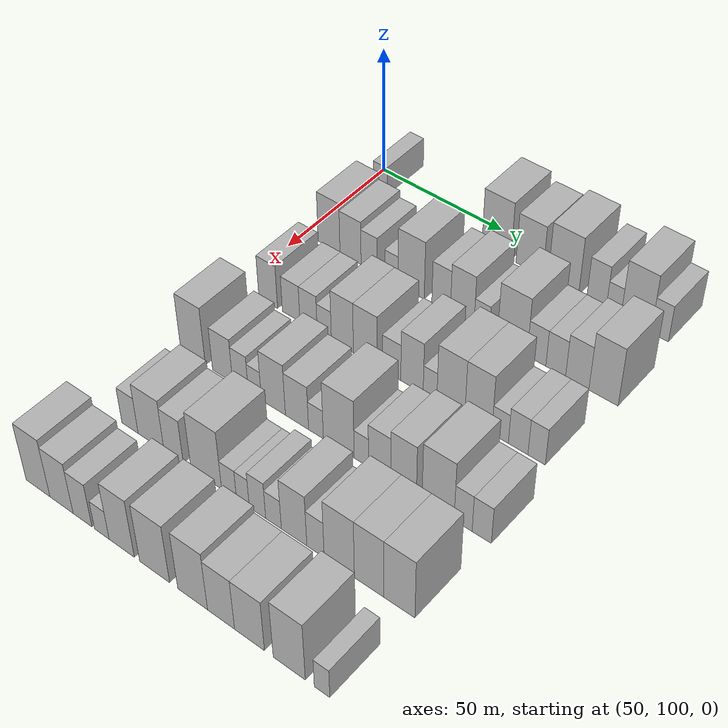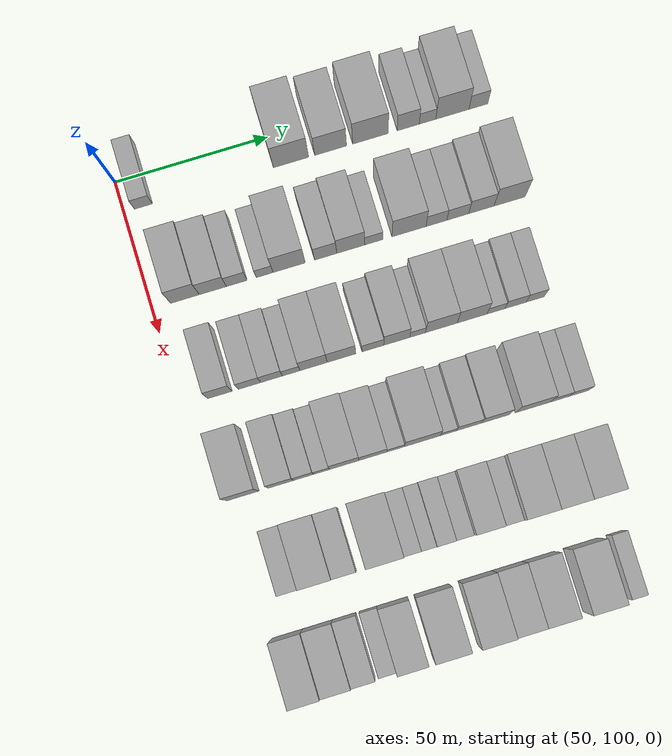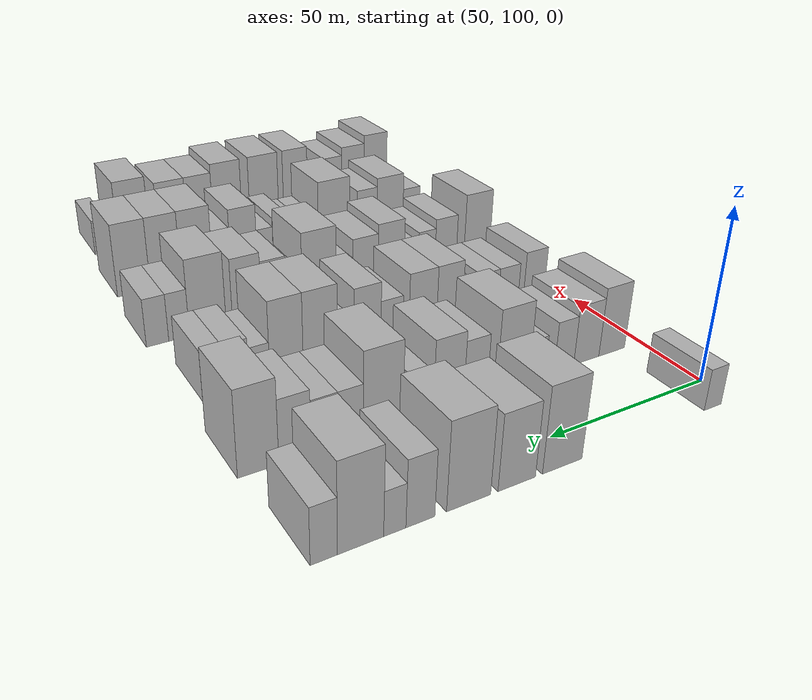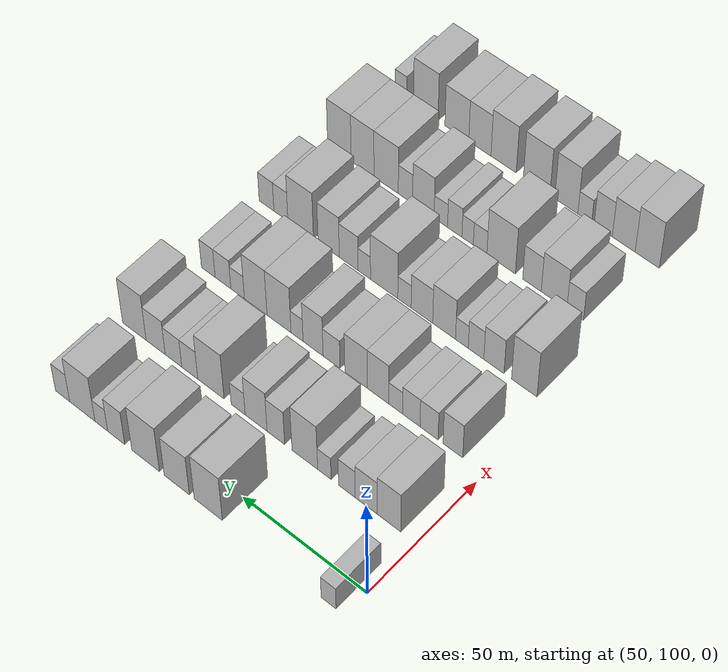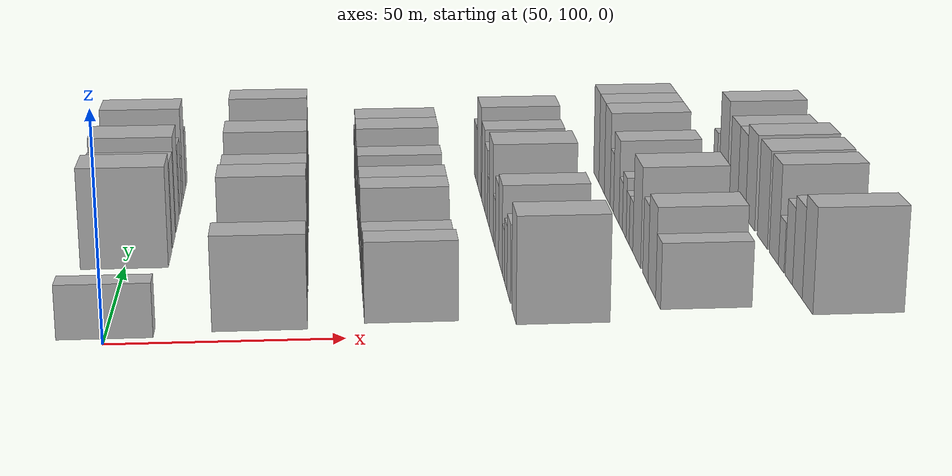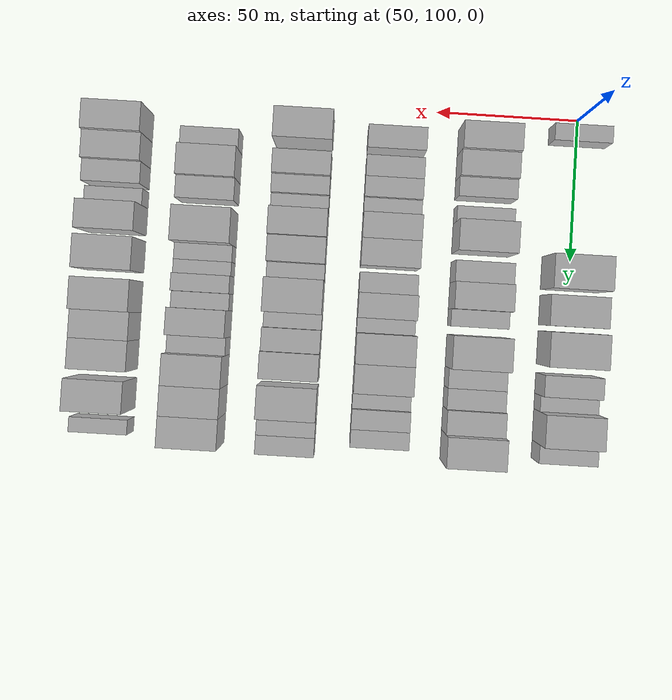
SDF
<sdf version="1.6">
 <world name="default">
  <model name="building_67">
   <static>1</static>
   <pose>50.0000 106.3643 0 0.000000 0.000000 0.000000</pose>
   <link name="link">
    <pose>0 0 6.00 0 0 0</pose>
    <collision name="collision"><geometry><box><size>20.0000 5.8722 12.0000</size></box></geometry></collision>
    <visual name="visual">
     <cast_shadows>0</cast_shadows>
     <geometry><box><size>20.0000 5.8722 12.0000</size></box></geometry>
     <material>
      <script>
       <uri>model://HANNAS_wall/materials/scripts</uri>
       <uri>model://HANNAS_wall/materials/textures</uri>
       <name>vrc/HANNAS_wall</name>
      </script>
     </material>
    </visual>
   </link>
  </model>
  <model name="building_68">
   <static>1</static>
   <pose>50.0000 154.6901 0 0.000000 0.000000 0.000000</pose>
   <link name="link">
    <pose>0 0 12.00 0 0 0</pose>
    <collision name="collision"><geometry><box><size>20.0000 11.5931 24.0000</size></box></geometry></collision>
    <visual name="visual">
     <cast_shadows>0</cast_shadows>
     <geometry><box><size>20.0000 11.5931 24.0000</size></box></geometry>
     <material>
      <script>
       <uri>model://HANNAS_wall/materials/scripts</uri>
       <uri>model://HANNAS_wall/materials/textures</uri>
       <name>vrc/HANNAS_wall</name>
      </script>
     </material>
    </visual>
   </link>
  </model>
  <model name="building_69">
   <static>1</static>
   <pose>50.0000 167.7251 0 0.000000 0.000000 0.000000</pose>
   <link name="link">
    <pose>0 0 10.50 0 0 0</pose>
    <collision name="collision"><geometry><box><size>20.0000 10.4769 21.0000</size></box></geometry></collision>
    <visual name="visual">
     <cast_shadows>0</cast_shadows>
     <geometry><box><size>20.0000 10.4769 21.0000</size></box></geometry>
     <material>
      <script>
       <uri>model://HANNAS_wall/materials/scripts</uri>
       <uri>model://HANNAS_wall/materials/textures</uri>
       <name>vrc/HANNAS_wall</name>
      </script>
     </material>
    </visual>
   </link>
  </model>
  <model name="building_70">
   <static>1</static>
   <pose>50.0000 180.8131 0 0.000000 0.000000 0.000000</pose>
   <link name="link">
    <pose>0 0 12.00 0 0 0</pose>
    <collision name="collision"><geometry><box><size>20.0000 11.6990 24.0000</size></box></geometry></collision>
    <visual name="visual">
     <cast_shadows>0</cast_shadows>
     <geometry><box><size>20.0000 11.6990 24.0000</size></box></geometry>
     <material>
      <script>
       <uri>model://HANNAS_wall/materials/scripts</uri>
       <uri>model://HANNAS_wall/materials/textures</uri>
       <name>vrc/HANNAS_wall</name>
      </script>
     </material>
    </visual>
   </link>
  </model>
  <model name="building_71">
   <static>1</static>
   <pose>50.0000 193.3093 0 0.000000 0.000000 0.000000</pose>
   <link name="link">
    <pose>0 0 9.00 0 0 0</pose>
    <collision name="collision"><geometry><box><size>20.0000 7.2934 18.0000</size></box></geometry></collision>
    <visual name="visual">
     <cast_shadows>0</cast_shadows>
     <geometry><box><size>20.0000 7.2934 18.0000</size></box></geometry>
     <material>
      <script>
       <uri>model://HANNAS_wall/materials/scripts</uri>
       <uri>model://HANNAS_wall/materials/textures</uri>
       <name>vrc/HANNAS_wall</name>
      </script>
     </material>
    </visual>
   </link>
  </model>
  <model name="building_72">
   <static>1</static>
   <pose>50.0000 199.6845 0 0.000000 0.000000 0.000000</pose>
   <link name="link">
    <pose>0 0 6.00 0 0 0</pose>
    <collision name="collision"><geometry><box><size>20.0000 5.4570 12.0000</size></box></geometry></collision>
    <visual name="visual">
     <cast_shadows>0</cast_shadows>
     <geometry><box><size>20.0000 5.4570 12.0000</size></box></geometry>
     <material>
      <script>
       <uri>model://HANNAS_wall/materials/scripts</uri>
       <uri>model://HANNAS_wall/materials/textures</uri>
       <name>vrc/HANNAS_wall</name>
      </script>
     </material>
    </visual>
   </link>
  </model>
  <model name="building_73">
   <static>1</static>
   <pose>50.0000 207.9001 0 0.000000 0.000000 0.000000</pose>
   <link name="link">
    <pose>0 0 12.00 0 0 0</pose>
    <collision name="collision"><geometry><box><size>20.0000 10.9741 24.0000</size></box></geometry></collision>
    <visual name="visual">
     <cast_shadows>0</cast_shadows>
     <geometry><box><size>20.0000 10.9741 24.0000</size></box></geometry>
     <material>
      <script>
       <uri>model://HANNAS_wall/materials/scripts</uri>
       <uri>model://HANNAS_wall/materials/textures</uri>
       <name>vrc/HANNAS_wall</name>
      </script>
     </material>
    </visual>
   </link>
  </model>
  <model name="building_74">
   <static>1</static>
   <pose>50.0000 216.4967 0 0.000000 0.000000 0.000000</pose>
   <link name="link">
    <pose>0 0 7.50 0 0 0</pose>
    <collision name="collision"><geometry><box><size>20.0000 6.2192 15.0000</size></box></geometry></collision>
    <visual name="visual">
     <cast_shadows>0</cast_shadows>
     <geometry><box><size>20.0000 6.2192 15.0000</size></box></geometry>
     <material>
      <script>
       <uri>model://HANNAS_wall/materials/scripts</uri>
       <uri>model://HANNAS_wall/materials/textures</uri>
       <name>vrc/HANNAS_wall</name>
      </script>
     </material>
    </visual>
   </link>
  </model>
  <model name="building_188">
   <static>1</static>
   <pose>82.0000 110.6654 0 0.000000 0.000000 0.000000</pose>
   <link name="link">
    <pose>0 0 10.50 0 0 0</pose>
    <collision name="collision"><geometry><box><size>20.0000 9.2781 21.0000</size></box></geometry></collision>
    <visual name="visual">
     <cast_shadows>0</cast_shadows>
     <geometry><box><size>20.0000 9.2781 21.0000</size></box></geometry>
     <material>
      <script>
       <uri>model://HANNAS_wall/materials/scripts</uri>
       <uri>model://HANNAS_wall/materials/textures</uri>
       <name>vrc/HANNAS_wall</name>
      </script>
     </material>
    </visual>
   </link>
  </model>
  <model name="building_189">
   <static>1</static>
   <pose>82.0000 119.7257 0 0.000000 0.000000 0.000000</pose>
   <link name="link">
    <pose>0 0 9.00 0 0 0</pose>
    <collision name="collision"><geometry><box><size>20.0000 8.8426 18.0000</size></box></geometry></collision>
    <visual name="visual">
     <cast_shadows>0</cast_shadows>
     <geometry><box><size>20.0000 8.8426 18.0000</size></box></geometry>
     <material>
      <script>
       <uri>model://HANNAS_wall/materials/scripts</uri>
       <uri>model://HANNAS_wall/materials/textures</uri>
       <name>vrc/HANNAS_wall</name>
      </script>
     </material>
    </visual>
   </link>
  </model>
  <model name="building_190">
   <static>1</static>
   <pose>82.0000 127.4957 0 0.000000 0.000000 0.000000</pose>
   <link name="link">
    <pose>0 0 7.50 0 0 0</pose>
    <collision name="collision"><geometry><box><size>20.0000 6.6973 15.0000</size></box></geometry></collision>
    <visual name="visual">
     <cast_shadows>0</cast_shadows>
     <geometry><box><size>20.0000 6.6973 15.0000</size></box></geometry>
     <material>
      <script>
       <uri>model://HANNAS_wall/materials/scripts</uri>
       <uri>model://HANNAS_wall/materials/textures</uri>
       <name>vrc/HANNAS_wall</name>
      </script>
     </material>
    </visual>
   </link>
  </model>
  <model name="building_191">
   <static>1</static>
   <pose>82.0000 136.5782 0 0.000000 0.000000 0.000000</pose>
   <link name="link">
    <pose>0 0 6.00 0 0 0</pose>
    <collision name="collision"><geometry><box><size>20.0000 5.4678 12.0000</size></box></geometry></collision>
    <visual name="visual">
     <cast_shadows>0</cast_shadows>
     <geometry><box><size>20.0000 5.4678 12.0000</size></box></geometry>
     <material>
      <script>
       <uri>model://HANNAS_wall/materials/scripts</uri>
       <uri>model://HANNAS_wall/materials/textures</uri>
       <name>vrc/HANNAS_wall</name>
      </script>
     </material>
    </visual>
   </link>
  </model>
  <model name="building_192">
   <static>1</static>
   <pose>82.0000 144.5621 0 0.000000 0.000000 0.000000</pose>
   <link name="link">
    <pose>0 0 12.00 0 0 0</pose>
    <collision name="collision"><geometry><box><size>20.0000 10.4999 24.0000</size></box></geometry></collision>
    <visual name="visual">
     <cast_shadows>0</cast_shadows>
     <geometry><box><size>20.0000 10.4999 24.0000</size></box></geometry>
     <material>
      <script>
       <uri>model://HANNAS_wall/materials/scripts</uri>
       <uri>model://HANNAS_wall/materials/textures</uri>
       <name>vrc/HANNAS_wall</name>
      </script>
     </material>
    </visual>
   </link>
  </model>
  <model name="building_193">
   <static>1</static>
   <pose>82.0000 156.4435 0 0.000000 0.000000 0.000000</pose>
   <link name="link">
    <pose>0 0 9.00 0 0 0</pose>
    <collision name="collision"><geometry><box><size>20.0000 7.2629 18.0000</size></box></geometry></collision>
    <visual name="visual">
     <cast_shadows>0</cast_shadows>
     <geometry><box><size>20.0000 7.2629 18.0000</size></box></geometry>
     <material>
      <script>
       <uri>model://HANNAS_wall/materials/scripts</uri>
       <uri>model://HANNAS_wall/materials/textures</uri>
       <name>vrc/HANNAS_wall</name>
      </script>
     </material>
    </visual>
   </link>
  </model>
  <model name="building_194">
   <static>1</static>
   <pose>82.0000 164.6586 0 0.000000 0.000000 0.000000</pose>
   <link name="link">
    <pose>0 0 10.50 0 0 0</pose>
    <collision name="collision"><geometry><box><size>20.0000 9.1674 21.0000</size></box></geometry></collision>
    <visual name="visual">
     <cast_shadows>0</cast_shadows>
     <geometry><box><size>20.0000 9.1674 21.0000</size></box></geometry>
     <material>
      <script>
       <uri>model://HANNAS_wall/materials/scripts</uri>
       <uri>model://HANNAS_wall/materials/textures</uri>
       <name>vrc/HANNAS_wall</name>
      </script>
     </material>
    </visual>
   </link>
  </model>
  <model name="building_195">
   <static>1</static>
   <pose>82.0000 172.1850 0 0.000000 0.000000 0.000000</pose>
   <link name="link">
    <pose>0 0 6.00 0 0 0</pose>
    <collision name="collision"><geometry><box><size>20.0000 5.8855 12.0000</size></box></geometry></collision>
    <visual name="visual">
     <cast_shadows>0</cast_shadows>
     <geometry><box><size>20.0000 5.8855 12.0000</size></box></geometry>
     <material>
      <script>
       <uri>model://HANNAS_wall/materials/scripts</uri>
       <uri>model://HANNAS_wall/materials/textures</uri>
       <name>vrc/HANNAS_wall</name>
      </script>
     </material>
    </visual>
   </link>
  </model>
  <model name="building_196">
   <static>1</static>
   <pose>82.0000 183.7070 0 0.000000 0.000000 0.000000</pose>
   <link name="link">
    <pose>0 0 12.00 0 0 0</pose>
    <collision name="collision"><geometry><box><size>20.0000 11.1584 24.0000</size></box></geometry></collision>
    <visual name="visual">
     <cast_shadows>0</cast_shadows>
     <geometry><box><size>20.0000 11.1584 24.0000</size></box></geometry>
     <material>
      <script>
       <uri>model://HANNAS_wall/materials/scripts</uri>
       <uri>model://HANNAS_wall/materials/textures</uri>
       <name>vrc/HANNAS_wall</name>
      </script>
     </material>
    </visual>
   </link>
  </model>
  <model name="building_197">
   <static>1</static>
   <pose>82.0000 192.7160 0 0.000000 0.000000 0.000000</pose>
   <link name="link">
    <pose>0 0 7.50 0 0 0</pose>
    <collision name="collision"><geometry><box><size>20.0000 6.8594 15.0000</size></box></geometry></collision>
    <visual name="visual">
     <cast_shadows>0</cast_shadows>
     <geometry><box><size>20.0000 6.8594 15.0000</size></box></geometry>
     <material>
      <script>
       <uri>model://HANNAS_wall/materials/scripts</uri>
       <uri>model://HANNAS_wall/materials/textures</uri>
       <name>vrc/HANNAS_wall</name>
      </script>
     </material>
    </visual>
   </link>
  </model>
  <model name="building_198">
   <static>1</static>
   <pose>82.0000 199.7238 0 0.000000 0.000000 0.000000</pose>
   <link name="link">
    <pose>0 0 7.50 0 0 0</pose>
    <collision name="collision"><geometry><box><size>20.0000 7.1562 15.0000</size></box></geometry></collision>
    <visual name="visual">
     <cast_shadows>0</cast_shadows>
     <geometry><box><size>20.0000 7.1562 15.0000</size></box></geometry>
     <material>
      <script>
       <uri>model://HANNAS_wall/materials/scripts</uri>
       <uri>model://HANNAS_wall/materials/textures</uri>
       <name>vrc/HANNAS_wall</name>
      </script>
     </material>
    </visual>
   </link>
  </model>
  <model name="building_199">
   <static>1</static>
   <pose>82.0000 207.4611 0 0.000000 0.000000 0.000000</pose>
   <link name="link">
    <pose>0 0 9.00 0 0 0</pose>
    <collision name="collision"><geometry><box><size>20.0000 8.3185 18.0000</size></box></geometry></collision>
    <visual name="visual">
     <cast_shadows>0</cast_shadows>
     <geometry><box><size>20.0000 8.3185 18.0000</size></box></geometry>
     <material>
      <script>
       <uri>model://HANNAS_wall/materials/scripts</uri>
       <uri>model://HANNAS_wall/materials/textures</uri>
       <name>vrc/HANNAS_wall</name>
      </script>
     </material>
    </visual>
   </link>
  </model>
  <model name="building_200">
   <static>1</static>
   <pose>82.0000 216.7696 0 0.000000 0.000000 0.000000</pose>
   <link name="link">
    <pose>0 0 12.00 0 0 0</pose>
    <collision name="collision"><geometry><box><size>20.0000 10.2983 24.0000</size></box></geometry></collision>
    <visual name="visual">
     <cast_shadows>0</cast_shadows>
     <geometry><box><size>20.0000 10.2983 24.0000</size></box></geometry>
     <material>
      <script>
       <uri>model://HANNAS_wall/materials/scripts</uri>
       <uri>model://HANNAS_wall/materials/textures</uri>
       <name>vrc/HANNAS_wall</name>
      </script>
     </material>
    </visual>
   </link>
  </model>
  <model name="building_310">
   <static>1</static>
   <pose>114.0000 112.6703 0 0.000000 0.000000 0.000000</pose>
   <link name="link">
    <pose>0 0 9.00 0 0 0</pose>
    <collision name="collision"><geometry><box><size>20.0000 7.8197 18.0000</size></box></geometry></collision>
    <visual name="visual">
     <cast_shadows>0</cast_shadows>
     <geometry><box><size>20.0000 7.8197 18.0000</size></box></geometry>
     <material>
      <script>
       <uri>model://HANNAS_wall/materials/scripts</uri>
       <uri>model://HANNAS_wall/materials/textures</uri>
       <name>vrc/HANNAS_wall</name>
      </script>
     </material>
    </visual>
   </link>
  </model>
  <model name="building_311">
   <static>1</static>
   <pose>114.0000 122.2066 0 0.000000 0.000000 0.000000</pose>
   <link name="link">
    <pose>0 0 7.50 0 0 0</pose>
    <collision name="collision"><geometry><box><size>20.0000 7.2528 15.0000</size></box></geometry></collision>
    <visual name="visual">
     <cast_shadows>0</cast_shadows>
     <geometry><box><size>20.0000 7.2528 15.0000</size></box></geometry>
     <material>
      <script>
       <uri>model://HANNAS_wall/materials/scripts</uri>
       <uri>model://HANNAS_wall/materials/textures</uri>
       <name>vrc/HANNAS_wall</name>
      </script>
     </material>
    </visual>
   </link>
  </model>
  <model name="building_312">
   <static>1</static>
   <pose>114.0000 129.3438 0 0.000000 0.000000 0.000000</pose>
   <link name="link">
    <pose>0 0 7.50 0 0 0</pose>
    <collision name="collision"><geometry><box><size>20.0000 7.0217 15.0000</size></box></geometry></collision>
    <visual name="visual">
     <cast_shadows>0</cast_shadows>
     <geometry><box><size>20.0000 7.0217 15.0000</size></box></geometry>
     <material>
      <script>
       <uri>model://HANNAS_wall/materials/scripts</uri>
       <uri>model://HANNAS_wall/materials/textures</uri>
       <name>vrc/HANNAS_wall</name>
      </script>
     </material>
    </visual>
   </link>
  </model>
  <model name="building_313">
   <static>1</static>
   <pose>114.0000 135.7171 0 0.000000 0.000000 0.000000</pose>
   <link name="link">
    <pose>0 0 6.00 0 0 0</pose>
    <collision name="collision"><geometry><box><size>20.0000 5.7250 12.0000</size></box></geometry></collision>
    <visual name="visual">
     <cast_shadows>0</cast_shadows>
     <geometry><box><size>20.0000 5.7250 12.0000</size></box></geometry>
     <material>
      <script>
       <uri>model://HANNAS_wall/materials/scripts</uri>
       <uri>model://HANNAS_wall/materials/textures</uri>
       <name>vrc/HANNAS_wall</name>
      </script>
     </material>
    </visual>
   </link>
  </model>
  <model name="building_314">
   <static>1</static>
   <pose>114.0000 142.9618 0 0.000000 0.000000 0.000000</pose>
   <link name="link">
    <pose>0 0 10.50 0 0 0</pose>
    <collision name="collision"><geometry><box><size>20.0000 8.7645 21.0000</size></box></geometry></collision>
    <visual name="visual">
     <cast_shadows>0</cast_shadows>
     <geometry><box><size>20.0000 8.7645 21.0000</size></box></geometry>
     <material>
      <script>
       <uri>model://HANNAS_wall/materials/scripts</uri>
       <uri>model://HANNAS_wall/materials/textures</uri>
       <name>vrc/HANNAS_wall</name>
      </script>
     </material>
    </visual>
   </link>
  </model>
  <model name="building_315">
   <static>1</static>
   <pose>114.0000 151.9770 0 0.000000 0.000000 0.000000</pose>
   <link name="link">
    <pose>0 0 10.50 0 0 0</pose>
    <collision name="collision"><geometry><box><size>20.0000 9.2659 21.0000</size></box></geometry></collision>
    <visual name="visual">
     <cast_shadows>0</cast_shadows>
     <geometry><box><size>20.0000 9.2659 21.0000</size></box></geometry>
     <material>
      <script>
       <uri>model://HANNAS_wall/materials/scripts</uri>
       <uri>model://HANNAS_wall/materials/textures</uri>
       <name>vrc/HANNAS_wall</name>
      </script>
     </material>
    </visual>
   </link>
  </model>
  <model name="building_316">
   <static>1</static>
   <pose>114.0000 162.1365 0 0.000000 0.000000 0.000000</pose>
   <link name="link">
    <pose>0 0 7.50 0 0 0</pose>
    <collision name="collision"><geometry><box><size>20.0000 7.0532 15.0000</size></box></geometry></collision>
    <visual name="visual">
     <cast_shadows>0</cast_shadows>
     <geometry><box><size>20.0000 7.0532 15.0000</size></box></geometry>
     <material>
      <script>
       <uri>model://HANNAS_wall/materials/scripts</uri>
       <uri>model://HANNAS_wall/materials/textures</uri>
       <name>vrc/HANNAS_wall</name>
      </script>
     </material>
    </visual>
   </link>
  </model>
  <model name="building_317">
   <static>1</static>
   <pose>114.0000 169.8855 0 0.000000 0.000000 0.000000</pose>
   <link name="link">
    <pose>0 0 10.50 0 0 0</pose>
    <collision name="collision"><geometry><box><size>20.0000 8.4447 21.0000</size></box></geometry></collision>
    <visual name="visual">
     <cast_shadows>0</cast_shadows>
     <geometry><box><size>20.0000 8.4447 21.0000</size></box></geometry>
     <material>
      <script>
       <uri>model://HANNAS_wall/materials/scripts</uri>
       <uri>model://HANNAS_wall/materials/textures</uri>
       <name>vrc/HANNAS_wall</name>
      </script>
     </material>
    </visual>
   </link>
  </model>
  <model name="building_318">
   <static>1</static>
   <pose>114.0000 176.6546 0 0.000000 0.000000 0.000000</pose>
   <link name="link">
    <pose>0 0 6.00 0 0 0</pose>
    <collision name="collision"><geometry><box><size>20.0000 5.0937 12.0000</size></box></geometry></collision>
    <visual name="visual">
     <cast_shadows>0</cast_shadows>
     <geometry><box><size>20.0000 5.0937 12.0000</size></box></geometry>
     <material>
      <script>
       <uri>model://HANNAS_wall/materials/scripts</uri>
       <uri>model://HANNAS_wall/materials/textures</uri>
       <name>vrc/HANNAS_wall</name>
      </script>
     </material>
    </visual>
   </link>
  </model>
  <model name="building_319">
   <static>1</static>
   <pose>114.0000 184.3352 0 0.000000 0.000000 0.000000</pose>
   <link name="link">
    <pose>0 0 12.00 0 0 0</pose>
    <collision name="collision"><geometry><box><size>20.0000 10.2675 24.0000</size></box></geometry></collision>
    <visual name="visual">
     <cast_shadows>0</cast_shadows>
     <geometry><box><size>20.0000 10.2675 24.0000</size></box></geometry>
     <material>
      <script>
       <uri>model://HANNAS_wall/materials/scripts</uri>
       <uri>model://HANNAS_wall/materials/textures</uri>
       <name>vrc/HANNAS_wall</name>
      </script>
     </material>
    </visual>
   </link>
  </model>
  <model name="building_320">
   <static>1</static>
   <pose>114.0000 194.3440 0 0.000000 0.000000 0.000000</pose>
   <link name="link">
    <pose>0 0 12.00 0 0 0</pose>
    <collision name="collision"><geometry><box><size>20.0000 9.7500 24.0000</size></box></geometry></collision>
    <visual name="visual">
     <cast_shadows>0</cast_shadows>
     <geometry><box><size>20.0000 9.7500 24.0000</size></box></geometry>
     <material>
      <script>
       <uri>model://HANNAS_wall/materials/scripts</uri>
       <uri>model://HANNAS_wall/materials/textures</uri>
       <name>vrc/HANNAS_wall</name>
      </script>
     </material>
    </visual>
   </link>
  </model>
  <model name="building_321">
   <static>1</static>
   <pose>114.0000 202.1589 0 0.000000 0.000000 0.000000</pose>
   <link name="link">
    <pose>0 0 6.00 0 0 0</pose>
    <collision name="collision"><geometry><box><size>20.0000 5.8799 12.0000</size></box></geometry></collision>
    <visual name="visual">
     <cast_shadows>0</cast_shadows>
     <geometry><box><size>20.0000 5.8799 12.0000</size></box></geometry>
     <material>
      <script>
       <uri>model://HANNAS_wall/materials/scripts</uri>
       <uri>model://HANNAS_wall/materials/textures</uri>
       <name>vrc/HANNAS_wall</name>
      </script>
     </material>
    </visual>
   </link>
  </model>
  <model name="building_322">
   <static>1</static>
   <pose>114.0000 208.5302 0 0.000000 0.000000 0.000000</pose>
   <link name="link">
    <pose>0 0 7.50 0 0 0</pose>
    <collision name="collision"><geometry><box><size>20.0000 6.8627 15.0000</size></box></geometry></collision>
    <visual name="visual">
     <cast_shadows>0</cast_shadows>
     <geometry><box><size>20.0000 6.8627 15.0000</size></box></geometry>
     <material>
      <script>
       <uri>model://HANNAS_wall/materials/scripts</uri>
       <uri>model://HANNAS_wall/materials/textures</uri>
       <name>vrc/HANNAS_wall</name>
      </script>
     </material>
    </visual>
   </link>
  </model>
  <model name="building_323">
   <static>1</static>
   <pose>114.0000 214.9681 0 0.000000 0.000000 0.000000</pose>
   <link name="link">
    <pose>0 0 7.50 0 0 0</pose>
    <collision name="collision"><geometry><box><size>20.0000 6.0131 15.0000</size></box></geometry></collision>
    <visual name="visual">
     <cast_shadows>0</cast_shadows>
     <geometry><box><size>20.0000 6.0131 15.0000</size></box></geometry>
     <material>
      <script>
       <uri>model://HANNAS_wall/materials/scripts</uri>
       <uri>model://HANNAS_wall/materials/textures</uri>
       <name>vrc/HANNAS_wall</name>
      </script>
     </material>
    </visual>
   </link>
  </model>
  <model name="building_433">
   <static>1</static>
   <pose>146.0000 110.6985 0 0.000000 0.000000 0.000000</pose>
   <link name="link">
    <pose>0 0 12.00 0 0 0</pose>
    <collision name="collision"><geometry><box><size>20.0000 10.1978 24.0000</size></box></geometry></collision>
    <visual name="visual">
     <cast_shadows>0</cast_shadows>
     <geometry><box><size>20.0000 10.1978 24.0000</size></box></geometry>
     <material>
      <script>
       <uri>model://HANNAS_wall/materials/scripts</uri>
       <uri>model://HANNAS_wall/materials/textures</uri>
       <name>vrc/HANNAS_wall</name>
      </script>
     </material>
    </visual>
   </link>
  </model>
  <model name="building_434">
   <static>1</static>
   <pose>146.0000 122.8788 0 0.000000 0.000000 0.000000</pose>
   <link name="link">
    <pose>0 0 9.00 0 0 0</pose>
    <collision name="collision"><geometry><box><size>20.0000 8.1629 18.0000</size></box></geometry></collision>
    <visual name="visual">
     <cast_shadows>0</cast_shadows>
     <geometry><box><size>20.0000 8.1629 18.0000</size></box></geometry>
     <material>
      <script>
       <uri>model://HANNAS_wall/materials/scripts</uri>
       <uri>model://HANNAS_wall/materials/textures</uri>
       <name>vrc/HANNAS_wall</name>
      </script>
     </material>
    </visual>
   </link>
  </model>
  <model name="building_435">
   <static>1</static>
   <pose>146.0000 130.1259 0 0.000000 0.000000 0.000000</pose>
   <link name="link">
    <pose>0 0 7.50 0 0 0</pose>
    <collision name="collision"><geometry><box><size>20.0000 6.3313 15.0000</size></box></geometry></collision>
    <visual name="visual">
     <cast_shadows>0</cast_shadows>
     <geometry><box><size>20.0000 6.3313 15.0000</size></box></geometry>
     <material>
      <script>
       <uri>model://HANNAS_wall/materials/scripts</uri>
       <uri>model://HANNAS_wall/materials/textures</uri>
       <name>vrc/HANNAS_wall</name>
      </script>
     </material>
    </visual>
   </link>
  </model>
  <model name="building_436">
   <static>1</static>
   <pose>146.0000 135.9012 0 0.000000 0.000000 0.000000</pose>
   <link name="link">
    <pose>0 0 6.00 0 0 0</pose>
    <collision name="collision"><geometry><box><size>20.0000 5.2192 12.0000</size></box></geometry></collision>
    <visual name="visual">
     <cast_shadows>0</cast_shadows>
     <geometry><box><size>20.0000 5.2192 12.0000</size></box></geometry>
     <material>
      <script>
       <uri>model://HANNAS_wall/materials/scripts</uri>
       <uri>model://HANNAS_wall/materials/textures</uri>
       <name>vrc/HANNAS_wall</name>
      </script>
     </material>
    </visual>
   </link>
  </model>
  <model name="building_437">
   <static>1</static>
   <pose>146.0000 143.2120 0 0.000000 0.000000 0.000000</pose>
   <link name="link">
    <pose>0 0 10.50 0 0 0</pose>
    <collision name="collision"><geometry><box><size>20.0000 9.4024 21.0000</size></box></geometry></collision>
    <visual name="visual">
     <cast_shadows>0</cast_shadows>
     <geometry><box><size>20.0000 9.4024 21.0000</size></box></geometry>
     <material>
      <script>
       <uri>model://HANNAS_wall/materials/scripts</uri>
       <uri>model://HANNAS_wall/materials/textures</uri>
       <name>vrc/HANNAS_wall</name>
      </script>
     </material>
    </visual>
   </link>
  </model>
  <model name="building_438">
   <static>1</static>
   <pose>146.0000 152.3873 0 0.000000 0.000000 0.000000</pose>
   <link name="link">
    <pose>0 0 9.00 0 0 0</pose>
    <collision name="collision"><geometry><box><size>20.0000 8.9482 18.0000</size></box></geometry></collision>
    <visual name="visual">
     <cast_shadows>0</cast_shadows>
     <geometry><box><size>20.0000 8.9482 18.0000</size></box></geometry>
     <material>
      <script>
       <uri>model://HANNAS_wall/materials/scripts</uri>
       <uri>model://HANNAS_wall/materials/textures</uri>
       <name>vrc/HANNAS_wall</name>
      </script>
     </material>
    </visual>
   </link>
  </model>
  <model name="building_439">
   <static>1</static>
   <pose>146.0000 159.6677 0 0.000000 0.000000 0.000000</pose>
   <link name="link">
    <pose>0 0 6.00 0 0 0</pose>
    <collision name="collision"><geometry><box><size>20.0000 5.6127 12.0000</size></box></geometry></collision>
    <visual name="visual">
     <cast_shadows>0</cast_shadows>
     <geometry><box><size>20.0000 5.6127 12.0000</size></box></geometry>
     <material>
      <script>
       <uri>model://HANNAS_wall/materials/scripts</uri>
       <uri>model://HANNAS_wall/materials/textures</uri>
       <name>vrc/HANNAS_wall</name>
      </script>
     </material>
    </visual>
   </link>
  </model>
  <model name="building_440">
   <static>1</static>
   <pose>146.0000 168.2292 0 0.000000 0.000000 0.000000</pose>
   <link name="link">
    <pose>0 0 12.00 0 0 0</pose>
    <collision name="collision"><geometry><box><size>20.0000 11.5103 24.0000</size></box></geometry></collision>
    <visual name="visual">
     <cast_shadows>0</cast_shadows>
     <geometry><box><size>20.0000 11.5103 24.0000</size></box></geometry>
     <material>
      <script>
       <uri>model://HANNAS_wall/materials/scripts</uri>
       <uri>model://HANNAS_wall/materials/textures</uri>
       <name>vrc/HANNAS_wall</name>
      </script>
     </material>
    </visual>
   </link>
  </model>
  <model name="building_441">
   <static>1</static>
   <pose>146.0000 176.6158 0 0.000000 0.000000 0.000000</pose>
   <link name="link">
    <pose>0 0 6.00 0 0 0</pose>
    <collision name="collision"><geometry><box><size>20.0000 5.2629 12.0000</size></box></geometry></collision>
    <visual name="visual">
     <cast_shadows>0</cast_shadows>
     <geometry><box><size>20.0000 5.2629 12.0000</size></box></geometry>
     <material>
      <script>
       <uri>model://HANNAS_wall/materials/scripts</uri>
       <uri>model://HANNAS_wall/materials/textures</uri>
       <name>vrc/HANNAS_wall</name>
      </script>
     </material>
    </visual>
   </link>
  </model>
  <model name="building_442">
   <static>1</static>
   <pose>146.0000 183.2648 0 0.000000 0.000000 0.000000</pose>
   <link name="link">
    <pose>0 0 9.00 0 0 0</pose>
    <collision name="collision"><geometry><box><size>20.0000 8.0352 18.0000</size></box></geometry></collision>
    <visual name="visual">
     <cast_shadows>0</cast_shadows>
     <geometry><box><size>20.0000 8.0352 18.0000</size></box></geometry>
     <material>
      <script>
       <uri>model://HANNAS_wall/materials/scripts</uri>
       <uri>model://HANNAS_wall/materials/textures</uri>
       <name>vrc/HANNAS_wall</name>
      </script>
     </material>
    </visual>
   </link>
  </model>
  <model name="building_443">
   <static>1</static>
   <pose>146.0000 191.8624 0 0.000000 0.000000 0.000000</pose>
   <link name="link">
    <pose>0 0 10.50 0 0 0</pose>
    <collision name="collision"><geometry><box><size>20.0000 9.1599 21.0000</size></box></geometry></collision>
    <visual name="visual">
     <cast_shadows>0</cast_shadows>
     <geometry><box><size>20.0000 9.1599 21.0000</size></box></geometry>
     <material>
      <script>
       <uri>model://HANNAS_wall/materials/scripts</uri>
       <uri>model://HANNAS_wall/materials/textures</uri>
       <name>vrc/HANNAS_wall</name>
      </script>
     </material>
    </visual>
   </link>
  </model>
  <model name="building_444">
   <static>1</static>
   <pose>146.0000 204.0241 0 0.000000 0.000000 0.000000</pose>
   <link name="link">
    <pose>0 0 12.00 0 0 0</pose>
    <collision name="collision"><geometry><box><size>20.0000 11.1636 24.0000</size></box></geometry></collision>
    <visual name="visual">
     <cast_shadows>0</cast_shadows>
     <geometry><box><size>20.0000 11.1636 24.0000</size></box></geometry>
     <material>
      <script>
       <uri>model://HANNAS_wall/materials/scripts</uri>
       <uri>model://HANNAS_wall/materials/textures</uri>
       <name>vrc/HANNAS_wall</name>
      </script>
     </material>
    </visual>
   </link>
  </model>
  <model name="building_445">
   <static>1</static>
   <pose>146.0000 212.6814 0 0.000000 0.000000 0.000000</pose>
   <link name="link">
    <pose>0 0 7.50 0 0 0</pose>
    <collision name="collision"><geometry><box><size>20.0000 6.1510 15.0000</size></box></geometry></collision>
    <visual name="visual">
     <cast_shadows>0</cast_shadows>
     <geometry><box><size>20.0000 6.1510 15.0000</size></box></geometry>
     <material>
      <script>
       <uri>model://HANNAS_wall/materials/scripts</uri>
       <uri>model://HANNAS_wall/materials/textures</uri>
       <name>vrc/HANNAS_wall</name>
      </script>
     </material>
    </visual>
   </link>
  </model>
  <model name="building_446">
   <static>1</static>
   <pose>146.0000 219.0086 0 0.000000 0.000000 0.000000</pose>
   <link name="link">
    <pose>0 0 7.50 0 0 0</pose>
    <collision name="collision"><geometry><box><size>20.0000 6.5034 15.0000</size></box></geometry></collision>
    <visual name="visual">
     <cast_shadows>0</cast_shadows>
     <geometry><box><size>20.0000 6.5034 15.0000</size></box></geometry>
     <material>
      <script>
       <uri>model://HANNAS_wall/materials/scripts</uri>
       <uri>model://HANNAS_wall/materials/textures</uri>
       <name>vrc/HANNAS_wall</name>
      </script>
     </material>
    </visual>
   </link>
  </model>
  <model name="building_558">
   <static>1</static>
   <pose>178.0000 115.9922 0 0.000000 0.000000 0.000000</pose>
   <link name="link">
    <pose>0 0 7.50 0 0 0</pose>
    <collision name="collision"><geometry><box><size>20.0000 6.6759 15.0000</size></box></geometry></collision>
    <visual name="visual">
     <cast_shadows>0</cast_shadows>
     <geometry><box><size>20.0000 6.6759 15.0000</size></box></geometry>
     <material>
      <script>
       <uri>model://HANNAS_wall/materials/scripts</uri>
       <uri>model://HANNAS_wall/materials/textures</uri>
       <name>vrc/HANNAS_wall</name>
      </script>
     </material>
    </visual>
   </link>
  </model>
  <model name="building_559">
   <static>1</static>
   <pose>178.0000 124.5469 0 0.000000 0.000000 0.000000</pose>
   <link name="link">
    <pose>0 0 10.50 0 0 0</pose>
    <collision name="collision"><geometry><box><size>20.0000 10.4336 21.0000</size></box></geometry></collision>
    <visual name="visual">
     <cast_shadows>0</cast_shadows>
     <geometry><box><size>20.0000 10.4336 21.0000</size></box></geometry>
     <material>
      <script>
       <uri>model://HANNAS_wall/materials/scripts</uri>
       <uri>model://HANNAS_wall/materials/textures</uri>
       <name>vrc/HANNAS_wall</name>
      </script>
     </material>
    </visual>
   </link>
  </model>
  <model name="building_560">
   <static>1</static>
   <pose>178.0000 133.5786 0 0.000000 0.000000 0.000000</pose>
   <link name="link">
    <pose>0 0 9.00 0 0 0</pose>
    <collision name="collision"><geometry><box><size>20.0000 7.6298 18.0000</size></box></geometry></collision>
    <visual name="visual">
     <cast_shadows>0</cast_shadows>
     <geometry><box><size>20.0000 7.6298 18.0000</size></box></geometry>
     <material>
      <script>
       <uri>model://HANNAS_wall/materials/scripts</uri>
       <uri>model://HANNAS_wall/materials/textures</uri>
       <name>vrc/HANNAS_wall</name>
      </script>
     </material>
    </visual>
   </link>
  </model>
  <model name="building_561">
   <static>1</static>
   <pose>178.0000 146.3042 0 0.000000 0.000000 0.000000</pose>
   <link name="link">
    <pose>0 0 12.00 0 0 0</pose>
    <collision name="collision"><geometry><box><size>20.0000 11.8214 24.0000</size></box></geometry></collision>
    <visual name="visual">
     <cast_shadows>0</cast_shadows>
     <geometry><box><size>20.0000 11.8214 24.0000</size></box></geometry>
     <material>
      <script>
       <uri>model://HANNAS_wall/materials/scripts</uri>
       <uri>model://HANNAS_wall/materials/textures</uri>
       <name>vrc/HANNAS_wall</name>
      </script>
     </material>
    </visual>
   </link>
  </model>
  <model name="building_562">
   <static>1</static>
   <pose>178.0000 155.0524 0 0.000000 0.000000 0.000000</pose>
   <link name="link">
    <pose>0 0 6.00 0 0 0</pose>
    <collision name="collision"><geometry><box><size>20.0000 5.6750 12.0000</size></box></geometry></collision>
    <visual name="visual">
     <cast_shadows>0</cast_shadows>
     <geometry><box><size>20.0000 5.6750 12.0000</size></box></geometry>
     <material>
      <script>
       <uri>model://HANNAS_wall/materials/scripts</uri>
       <uri>model://HANNAS_wall/materials/textures</uri>
       <name>vrc/HANNAS_wall</name>
      </script>
     </material>
    </visual>
   </link>
  </model>
  <model name="building_563">
   <static>1</static>
   <pose>178.0000 160.2926 0 0.000000 0.000000 0.000000</pose>
   <link name="link">
    <pose>0 0 6.00 0 0 0</pose>
    <collision name="collision"><geometry><box><size>20.0000 4.8054 12.0000</size></box></geometry></collision>
    <visual name="visual">
     <cast_shadows>0</cast_shadows>
     <geometry><box><size>20.0000 4.8054 12.0000</size></box></geometry>
     <material>
      <script>
       <uri>model://HANNAS_wall/materials/scripts</uri>
       <uri>model://HANNAS_wall/materials/textures</uri>
       <name>vrc/HANNAS_wall</name>
      </script>
     </material>
    </visual>
   </link>
  </model>
  <model name="building_564">
   <static>1</static>
   <pose>178.0000 165.7354 0 0.000000 0.000000 0.000000</pose>
   <link name="link">
    <pose>0 0 7.50 0 0 0</pose>
    <collision name="collision"><geometry><box><size>20.0000 6.0800 15.0000</size></box></geometry></collision>
    <visual name="visual">
     <cast_shadows>0</cast_shadows>
     <geometry><box><size>20.0000 6.0800 15.0000</size></box></geometry>
     <material>
      <script>
       <uri>model://HANNAS_wall/materials/scripts</uri>
       <uri>model://HANNAS_wall/materials/textures</uri>
       <name>vrc/HANNAS_wall</name>
      </script>
     </material>
    </visual>
   </link>
  </model>
  <model name="building_565">
   <static>1</static>
   <pose>178.0000 171.6416 0 0.000000 0.000000 0.000000</pose>
   <link name="link">
    <pose>0 0 6.00 0 0 0</pose>
    <collision name="collision"><geometry><box><size>20.0000 5.7323 12.0000</size></box></geometry></collision>
    <visual name="visual">
     <cast_shadows>0</cast_shadows>
     <geometry><box><size>20.0000 5.7323 12.0000</size></box></geometry>
     <material>
      <script>
       <uri>model://HANNAS_wall/materials/scripts</uri>
       <uri>model://HANNAS_wall/materials/textures</uri>
       <name>vrc/HANNAS_wall</name>
      </script>
     </material>
    </visual>
   </link>
  </model>
  <model name="building_566">
   <static>1</static>
   <pose>178.0000 179.1079 0 0.000000 0.000000 0.000000</pose>
   <link name="link">
    <pose>0 0 10.50 0 0 0</pose>
    <collision name="collision"><geometry><box><size>20.0000 9.2003 21.0000</size></box></geometry></collision>
    <visual name="visual">
     <cast_shadows>0</cast_shadows>
     <geometry><box><size>20.0000 9.2003 21.0000</size></box></geometry>
     <material>
      <script>
       <uri>model://HANNAS_wall/materials/scripts</uri>
       <uri>model://HANNAS_wall/materials/textures</uri>
       <name>vrc/HANNAS_wall</name>
      </script>
     </material>
    </visual>
   </link>
  </model>
  <model name="building_567">
   <static>1</static>
   <pose>178.0000 186.7855 0 0.000000 0.000000 0.000000</pose>
   <link name="link">
    <pose>0 0 7.50 0 0 0</pose>
    <collision name="collision"><geometry><box><size>20.0000 6.1550 15.0000</size></box></geometry></collision>
    <visual name="visual">
     <cast_shadows>0</cast_shadows>
     <geometry><box><size>20.0000 6.1550 15.0000</size></box></geometry>
     <material>
      <script>
       <uri>model://HANNAS_wall/materials/scripts</uri>
       <uri>model://HANNAS_wall/materials/textures</uri>
       <name>vrc/HANNAS_wall</name>
      </script>
     </material>
    </visual>
   </link>
  </model>
  <model name="building_568">
   <static>1</static>
   <pose>178.0000 195.1392 0 0.000000 0.000000 0.000000</pose>
   <link name="link">
    <pose>0 0 12.00 0 0 0</pose>
    <collision name="collision"><geometry><box><size>20.0000 10.5523 24.0000</size></box></geometry></collision>
    <visual name="visual">
     <cast_shadows>0</cast_shadows>
     <geometry><box><size>20.0000 10.5523 24.0000</size></box></geometry>
     <material>
      <script>
       <uri>model://HANNAS_wall/materials/scripts</uri>
       <uri>model://HANNAS_wall/materials/textures</uri>
       <name>vrc/HANNAS_wall</name>
      </script>
     </material>
    </visual>
   </link>
  </model>
  <model name="building_569">
   <static>1</static>
   <pose>178.0000 205.4257 0 0.000000 0.000000 0.000000</pose>
   <link name="link">
    <pose>0 0 12.00 0 0 0</pose>
    <collision name="collision"><geometry><box><size>20.0000 10.0207 24.0000</size></box></geometry></collision>
    <visual name="visual">
     <cast_shadows>0</cast_shadows>
     <geometry><box><size>20.0000 10.0207 24.0000</size></box></geometry>
     <material>
      <script>
       <uri>model://HANNAS_wall/materials/scripts</uri>
       <uri>model://HANNAS_wall/materials/textures</uri>
       <name>vrc/HANNAS_wall</name>
      </script>
     </material>
    </visual>
   </link>
  </model>
  <model name="building_570">
   <static>1</static>
   <pose>178.0000 215.6415 0 0.000000 0.000000 0.000000</pose>
   <link name="link">
    <pose>0 0 12.00 0 0 0</pose>
    <collision name="collision"><geometry><box><size>20.0000 10.4110 24.0000</size></box></geometry></collision>
    <visual name="visual">
     <cast_shadows>0</cast_shadows>
     <geometry><box><size>20.0000 10.4110 24.0000</size></box></geometry>
     <material>
      <script>
       <uri>model://HANNAS_wall/materials/scripts</uri>
       <uri>model://HANNAS_wall/materials/textures</uri>
       <name>vrc/HANNAS_wall</name>
      </script>
     </material>
    </visual>
   </link>
  </model>
  <model name="building_678">
   <static>1</static>
   <pose>210.0000 111.8884 0 0.000000 0.000000 0.000000</pose>
   <link name="link">
    <pose>0 0 12.00 0 0 0</pose>
    <collision name="collision"><geometry><box><size>20.0000 9.7784 24.0000</size></box></geometry></collision>
    <visual name="visual">
     <cast_shadows>0</cast_shadows>
     <geometry><box><size>20.0000 9.7784 24.0000</size></box></geometry>
     <material>
      <script>
       <uri>model://HANNAS_wall/materials/scripts</uri>
       <uri>model://HANNAS_wall/materials/textures</uri>
       <name>vrc/HANNAS_wall</name>
      </script>
     </material>
    </visual>
   </link>
  </model>
  <model name="building_679">
   <static>1</static>
   <pose>210.0000 121.4471 0 0.000000 0.000000 0.000000</pose>
   <link name="link">
    <pose>0 0 10.50 0 0 0</pose>
    <collision name="collision"><geometry><box><size>20.0000 9.3390 21.0000</size></box></geometry></collision>
    <visual name="visual">
     <cast_shadows>0</cast_shadows>
     <geometry><box><size>20.0000 9.3390 21.0000</size></box></geometry>
     <material>
      <script>
       <uri>model://HANNAS_wall/materials/scripts</uri>
       <uri>model://HANNAS_wall/materials/textures</uri>
       <name>vrc/HANNAS_wall</name>
      </script>
     </material>
    </visual>
   </link>
  </model>
  <model name="building_680">
   <static>1</static>
   <pose>210.0000 129.8496 0 0.000000 0.000000 0.000000</pose>
   <link name="link">
    <pose>0 0 9.00 0 0 0</pose>
    <collision name="collision"><geometry><box><size>20.0000 7.4660 18.0000</size></box></geometry></collision>
    <visual name="visual">
     <cast_shadows>0</cast_shadows>
     <geometry><box><size>20.0000 7.4660 18.0000</size></box></geometry>
     <material>
      <script>
       <uri>model://HANNAS_wall/materials/scripts</uri>
       <uri>model://HANNAS_wall/materials/textures</uri>
       <name>vrc/HANNAS_wall</name>
      </script>
     </material>
    </visual>
   </link>
  </model>
  <model name="building_681">
   <static>1</static>
   <pose>210.0000 137.4300 0 0.000000 0.000000 0.000000</pose>
   <link name="link">
    <pose>0 0 6.00 0 0 0</pose>
    <collision name="collision"><geometry><box><size>20.0000 5.6948 12.0000</size></box></geometry></collision>
    <visual name="visual">
     <cast_shadows>0</cast_shadows>
     <geometry><box><size>20.0000 5.6948 12.0000</size></box></geometry>
     <material>
      <script>
       <uri>model://HANNAS_wall/materials/scripts</uri>
       <uri>model://HANNAS_wall/materials/textures</uri>
       <name>vrc/HANNAS_wall</name>
      </script>
     </material>
    </visual>
   </link>
  </model>
  <model name="building_682">
   <static>1</static>
   <pose>210.0000 145.1070 0 0.000000 0.000000 0.000000</pose>
   <link name="link">
    <pose>0 0 12.00 0 0 0</pose>
    <collision name="collision"><geometry><box><size>20.0000 9.6591 24.0000</size></box></geometry></collision>
    <visual name="visual">
     <cast_shadows>0</cast_shadows>
     <geometry><box><size>20.0000 9.6591 24.0000</size></box></geometry>
     <material>
      <script>
       <uri>model://HANNAS_wall/materials/scripts</uri>
       <uri>model://HANNAS_wall/materials/textures</uri>
       <name>vrc/HANNAS_wall</name>
      </script>
     </material>
    </visual>
   </link>
  </model>
  <model name="building_683">
   <static>1</static>
   <pose>210.0000 157.5387 0 0.000000 0.000000 0.000000</pose>
   <link name="link">
    <pose>0 0 12.00 0 0 0</pose>
    <collision name="collision"><geometry><box><size>20.0000 11.2044 24.0000</size></box></geometry></collision>
    <visual name="visual">
     <cast_shadows>0</cast_shadows>
     <geometry><box><size>20.0000 11.2044 24.0000</size></box></geometry>
     <material>
      <script>
       <uri>model://HANNAS_wall/materials/scripts</uri>
       <uri>model://HANNAS_wall/materials/textures</uri>
       <name>vrc/HANNAS_wall</name>
      </script>
     </material>
    </visual>
   </link>
  </model>
  <model name="building_684">
   <static>1</static>
   <pose>210.0000 171.5454 0 0.000000 0.000000 0.000000</pose>
   <link name="link">
    <pose>0 0 12.00 0 0 0</pose>
    <collision name="collision"><geometry><box><size>20.0000 10.8090 24.0000</size></box></geometry></collision>
    <visual name="visual">
     <cast_shadows>0</cast_shadows>
     <geometry><box><size>20.0000 10.8090 24.0000</size></box></geometry>
     <material>
      <script>
       <uri>model://HANNAS_wall/materials/scripts</uri>
       <uri>model://HANNAS_wall/materials/textures</uri>
       <name>vrc/HANNAS_wall</name>
      </script>
     </material>
    </visual>
   </link>
  </model>
  <model name="building_685">
   <static>1</static>
   <pose>210.0000 181.7489 0 0.000000 0.000000 0.000000</pose>
   <link name="link">
    <pose>0 0 10.50 0 0 0</pose>
    <collision name="collision"><geometry><box><size>20.0000 9.5980 21.0000</size></box></geometry></collision>
    <visual name="visual">
     <cast_shadows>0</cast_shadows>
     <geometry><box><size>20.0000 9.5980 21.0000</size></box></geometry>
     <material>
      <script>
       <uri>model://HANNAS_wall/materials/scripts</uri>
       <uri>model://HANNAS_wall/materials/textures</uri>
       <name>vrc/HANNAS_wall</name>
      </script>
     </material>
    </visual>
   </link>
  </model>
  <model name="building_686">
   <static>1</static>
   <pose>210.0000 191.7285 0 0.000000 0.000000 0.000000</pose>
   <link name="link">
    <pose>0 0 10.50 0 0 0</pose>
    <collision name="collision"><geometry><box><size>20.0000 10.3613 21.0000</size></box></geometry></collision>
    <visual name="visual">
     <cast_shadows>0</cast_shadows>
     <geometry><box><size>20.0000 10.3613 21.0000</size></box></geometry>
     <material>
      <script>
       <uri>model://HANNAS_wall/materials/scripts</uri>
       <uri>model://HANNAS_wall/materials/textures</uri>
       <name>vrc/HANNAS_wall</name>
      </script>
     </material>
    </visual>
   </link>
  </model>
  <model name="building_687">
   <static>1</static>
   <pose>210.0000 205.3133 0 0.000000 0.000000 0.000000</pose>
   <link name="link">
    <pose>0 0 12.00 0 0 0</pose>
    <collision name="collision"><geometry><box><size>20.0000 10.8083 24.0000</size></box></geometry></collision>
    <visual name="visual">
     <cast_shadows>0</cast_shadows>
     <geometry><box><size>20.0000 10.8083 24.0000</size></box></geometry>
     <material>
      <script>
       <uri>model://HANNAS_wall/materials/scripts</uri>
       <uri>model://HANNAS_wall/materials/textures</uri>
       <name>vrc/HANNAS_wall</name>
      </script>
     </material>
    </visual>
   </link>
  </model>
  <model name="building_688">
   <static>1</static>
   <pose>210.0000 216.2663 0 0.000000 0.000000 0.000000</pose>
   <link name="link">
    <pose>0 0 6.00 0 0 0</pose>
    <collision name="collision"><geometry><box><size>20.0000 5.0977 12.0000</size></box></geometry></collision>
    <visual name="visual">
     <cast_shadows>0</cast_shadows>
     <geometry><box><size>20.0000 5.0977 12.0000</size></box></geometry>
     <material>
      <script>
       <uri>model://HANNAS_wall/materials/scripts</uri>
       <uri>model://HANNAS_wall/materials/textures</uri>
       <name>vrc/HANNAS_wall</name>
      </script>
     </material>
    </visual>
   </link>
  </model>
 </world>
</sdf>
